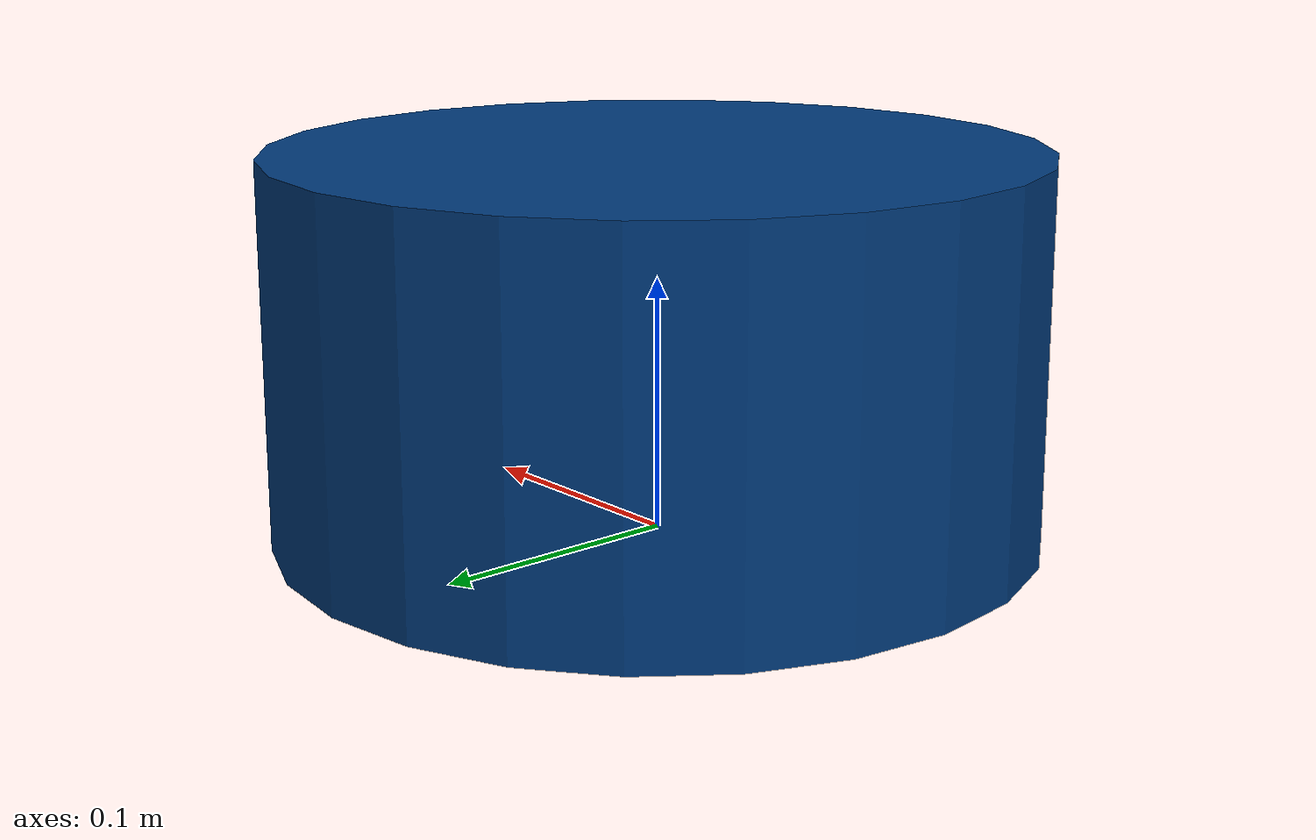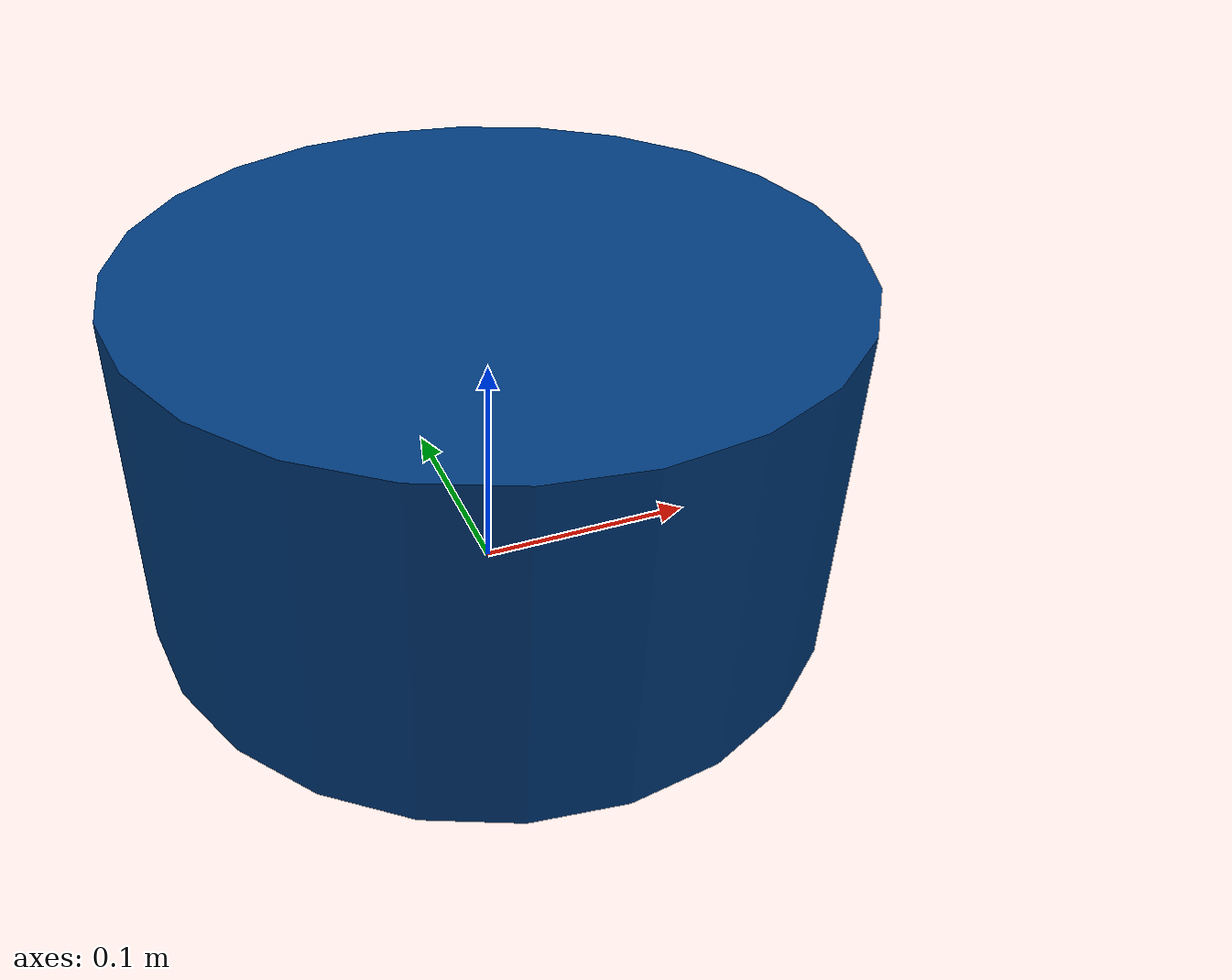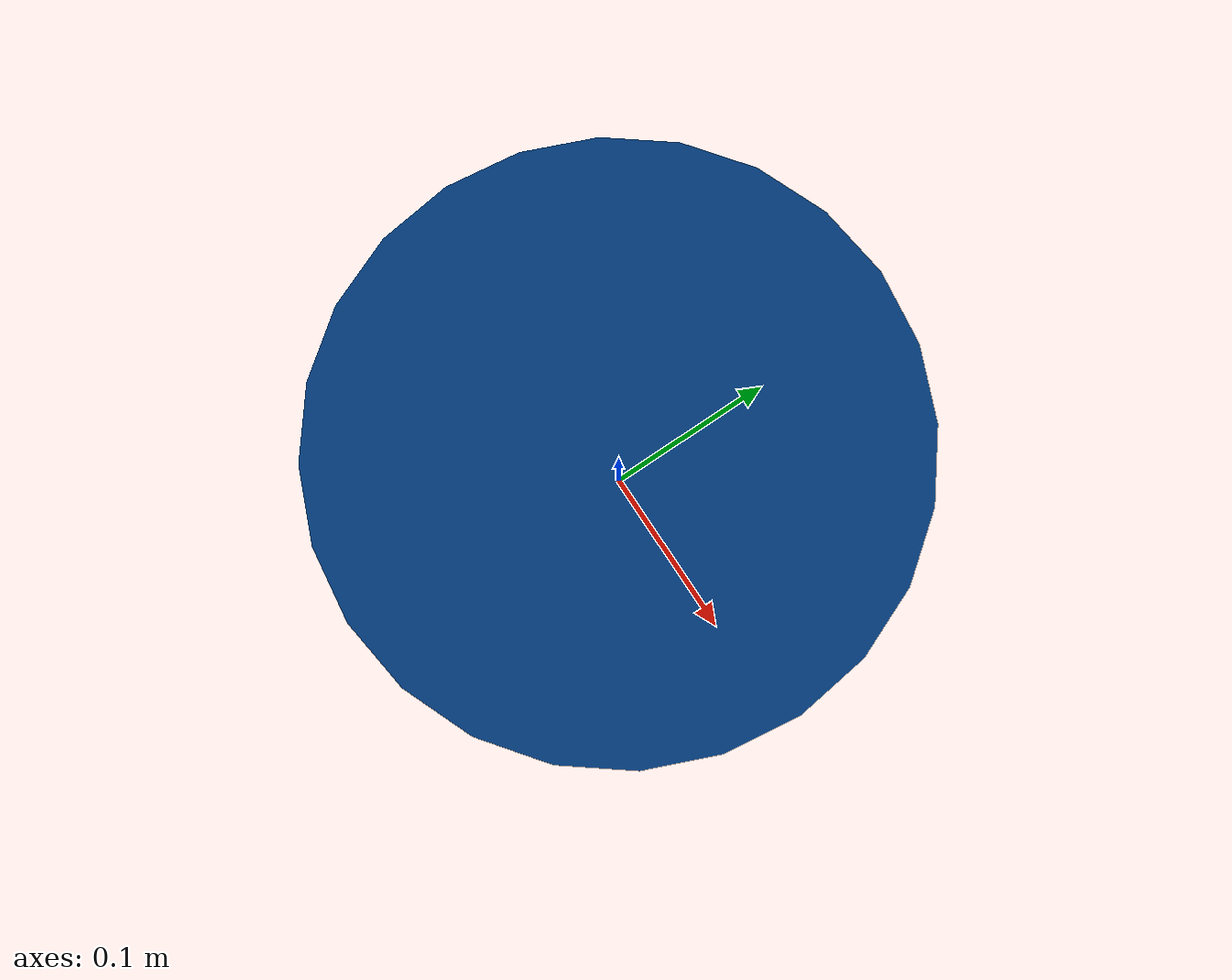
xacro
<?xml version="1.0"?>
<robot xmlns:xacro="http://www.ros.org/wiki/xacro"  name="$(arg name)">

    <xacro:arg name="name" default="agent"/>

    <xacro:arg name="height" default="0.15"/>
    <xacro:arg name="radius" default="0.15"/>
    <xacro:arg name="laser_enable"  default="false"/>
    <xacro:arg name="collide_bitmask" default="0x01"/>

    <xacro:include filename="robot_core.xacro" />
    <xacro:include filename="lidar.xacro" />

</robot>

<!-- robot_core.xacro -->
<robot xmlns:xacro="http://www.ros.org/wiki/xacro" >
    <xacro:include filename="inertial_macros.xacro"/>

    <material name="bright_dark_blue">
        <color rgba="0.0 0.23 0.49 1"/>
    </material>

    <material name="med_blue">
        <color rgba="0.0 0.55 1.0 1"/>
    </material>

    <material name="pink">
        <color rgba="1.0 0.45 0.71 1"/>
    </material>

    <material name="purple">
        <color rgba="0.78 0.0 1.0 1"/>
    </material>

    <material name="green">
        <color rgba="0.31 0.8 0.55 1"/>
    </material>

    <material name="orange">
        <color rgba="1.0 0.62 0.23 1"/>
    </material>

    <material name="yellow">
        <color rgba="0.98 0.91 0.35 1"/>
    </material>

    <material name="red">
        <color rgba="0.85 0.19 0.2 1"/>
    </material>

    <!-- BASE LINK -->

    <link name="base_link"/>

    <joint name="base_footprint_joint" type="fixed">
        <parent link="base_link"/>
        <child link="base_footprint"/>
        <origin xyz="0 0 0" rpy="0 0 0"/>
    </joint>

    <link name="base_footprint"/>
    <!-- CHASSIS LINK -->

    <joint name="chassis_joint" type="fixed">
        <parent link="base_link"/>
        <child link="chassis"/>
        <origin xyz="-${$(arg radius)} 0 0"/>
    </joint>

    <link name="chassis">
        <visual>
                <origin xyz="$(arg radius) 0 ${$(arg height)/2}"/>
                <geometry>
                <cylinder radius="$(arg radius)" length="$(arg height)"/>
                </geometry>
                <material name="bright_dark_blue"/>
            </visual>
            <collision>
                <origin xyz="$(arg radius) 0 ${$(arg height)/2}"/>
                <geometry>
                <cylinder radius="$(arg radius)" length="$(arg height)"/>
                </geometry>
            </collision>

        <xacro:inertial_cylinder mass='0.5' length="$(arg height)" radius="$(arg radius)" >
            <origin xyz="$(arg radius) 0 ${$(arg height)/2}" rpy="0 0 0"/>
        </xacro:inertial_cylinder>
    </link>

    <gazebo reference="chassis">
        <collision>
        <surface>
            <contact>
                <collide_bitmask>$(arg collide_bitmask)</collide_bitmask>
            </contact>
        </surface>
        </collision>

    </gazebo>

    <gazebo>
         <plugin
            filename="ignition-gazebo-pose-publisher-system"
            name="ignition::gazebo::systems::PosePublisher">
            <publish_link_pose>false</publish_link_pose>
            <publish_nested_model_pose>true</publish_nested_model_pose>
            <update_frequency>10</update_frequency>

        </plugin>

	<plugin filename="ignition-gazebo-velocity-control-system"
                name="ignition::gazebo::systems::VelocityControl">
            <topic>/model/$(arg name)/cmd_vel</topic>
        </plugin>

	  <plugin filename="ignition-gazebo-odometry-publisher-system"
                name="ignition::gazebo::systems::OdometryPublisher">
                <odom_frame>$(arg name)/odom</odom_frame>
                <robot_base_frame>$(arg name)/base_link</robot_base_frame>
                <odom_publish_frequency>10</odom_publish_frequency>
                <odom_topic>/model/$(arg name)/odometry</odom_topic>
                <odom_covariance_topic>/model/$(arg name)/odometry_with_covariance</odom_covariance_topic>
                <tf_topic>/model/$(arg name)/odometry_tf</tf_topic>
                <dimensions>3</dimensions>
                <xyz_offset>0 0 0</xyz_offset>
                <rpy_offset>0 0 0</rpy_offset>
                <gaussian_noise>0 </gaussian_noise>
            </plugin>

    </gazebo>
</robot>

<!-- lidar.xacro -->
<robot xmlns:xacro="http://www.ros.org/wiki/xacro" >
    <!--Model Shape Settings-->
    <xacro:arg name="name" default="agent"/>
    <!-- Laser Settings-->
    <xacro:arg name="laser_visualize"  default="true"/>
    <xacro:arg name="laser_update_rate"  default="10"/>
    <xacro:arg name="laser_samples"  default="360"/>
    <xacro:arg name="laser_min_angle"  default="-3.1415"/>
    <xacro:arg name="laser_max_angle"  default="3.1515"/>
    <xacro:arg name="laser_max_range"  default="6"/>
    <xacro:arg name="laser_range_resolution"  default="0.01"/>
    <xacro:arg name="laser_noise_stddev"  default="0.01"/>

    <material name="trans">
        <color rgba="0.0 0.0 0.0 0.0"/>
    </material>

    <joint name="lidar_joint" type="fixed">
        <parent link="chassis"/>
        <child link="base_laser"/>
        <origin xyz="0.1 0 0.125" rpy="0 0 0"/>
    </joint>

    <link name="base_laser">

        <visual>
            <origin xyz="0 0 0" rpy="0 0 0"/>
            <geometry>
                <cylinder radius="0.05" length="0.04"/>
            </geometry>
            <material name="trans"/>
        </visual>

        <collision>
          <geometry>
                <cylinder radius="0.05" length="0.04"/>
          </geometry>

        </collision>

        <xacro:inertial_cylinder mass="0.1" length="0.04" radius="0.05">
            <origin xyz="0 0 0" rpy="0 0 0"/>
        </xacro:inertial_cylinder>
    </link>

    <gazebo reference= "base_laser">
        <material>Gazebo/Red</material>
        <collision>
         <surface>
            <contact>
              <collide_bitmask>$(arg collide_bitmask)</collide_bitmask>
            </contact>
          </surface>
        </collision>
        <xacro:if value="$(arg laser_enable)">
            <sensor name='gpu_lidar' type='gpu_lidar'>
                <always_on>true</always_on>
                <update_rate>$(arg laser_update_rate)</update_rate>
                <visualize>$(arg laser_visualize)</visualize>
                <pose>0 0 0 0 0 0</pose>
                <topic>/model/$(arg name)/scan</topic>
                <ignition_frame_id>$(arg name)/base_laser</ignition_frame_id>
                <update_rate>10</update_rate>
                <ray>
                    <scan>
                        <horizontal>
                            <samples>$(arg laser_samples)</samples>
                            <resolution>1</resolution>
                            <min_angle>$(arg laser_min_angle)</min_angle>
                            <max_angle>$(arg laser_max_angle)</max_angle>
                        </horizontal>
                        <vertical>
                            <samples>1</samples>
                            <resolution>0.01</resolution>
                            <min_angle>0</min_angle>
                            <max_angle>0</max_angle>
                        </vertical>
                    </scan>
                    <range>
                        <min>0.1</min>
                        <max>$(arg laser_max_range)</max>
                        <resolution>$(arg laser_range_resolution)</resolution>
                    </range>
                </ray>
            </sensor>
        </xacro:if>
    </gazebo>

</robot>
